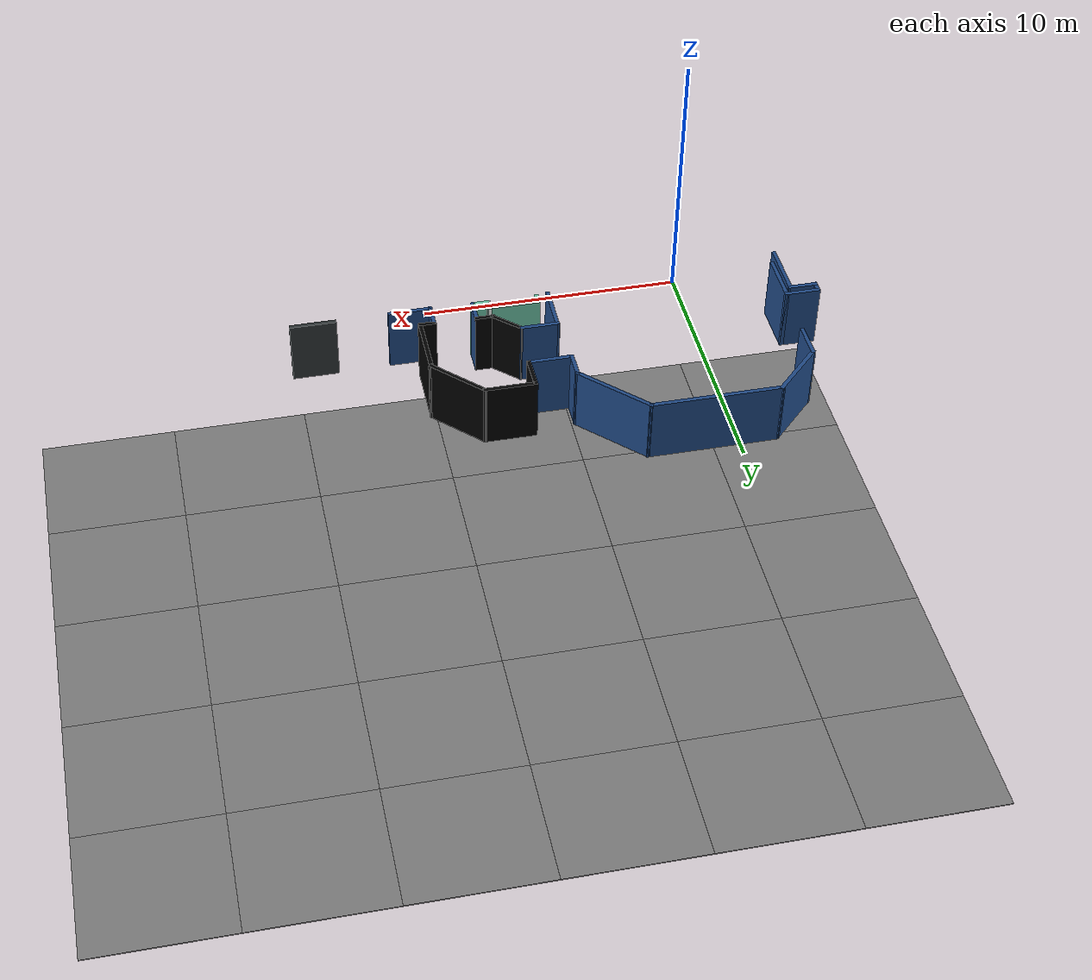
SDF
<sdf version="1.7">
 <world name="default">
  <model name="among_us_world">
   <pose>0.133216 -0.12311 0 0 -0 0</pose>
   <link name="Wall_0">
    <collision name="Wall_0_Collision">
     <geometry><box><size>5 0.15 2.5</size></box></geometry>
     <pose>0 0 1.25 0 -0 0</pose>
    </collision>
    <visual name="Wall_0_Visual">
     <pose>0 0 1.25 0 -0 0</pose>
     <geometry><box><size>5 0.15 2.5</size></box></geometry>
     <material>
      <ambient>0.12549 0.290196 0.529412 1</ambient>
      <diffuse>0.12549 0.290196 0.529412 1</diffuse>
      <specular>0.08 0.08 0.08 1</specular>
      <emissive>0 0 0 1</emissive>
      <pbr><metal><roughness>0.82</roughness><metalness>0</metalness></metal></pbr>
     </material>
     <meta><layer>0</layer></meta>
    </visual>
    <pose>0.883234 9.56872 0 0 -0 0</pose>
   </link>
   <link name="Wall_1">
    <collision name="Wall_1_Collision">
     <geometry><box><size>3.25 0.15 2.5</size></box></geometry>
     <pose>0 0 1.25 0 -0 0</pose>
    </collision>
    <visual name="Wall_1_Visual">
     <pose>0 0 1.25 0 -0 0</pose>
     <geometry><box><size>3.25 0.15 2.5</size></box></geometry>
     <material>
      <ambient>0.12549 0.290196 0.529412 1</ambient>
      <diffuse>0.12549 0.290196 0.529412 1</diffuse>
      <specular>0.08 0.08 0.08 1</specular>
      <emissive>0 0 0 1</emissive>
      <pbr><metal><roughness>0.82</roughness><metalness>0</metalness></metal></pbr>
     </material>
     <meta><layer>0</layer></meta>
    </visual>
    <pose>4.40446 8.47278 0 0 -0 -0.785267</pose>
   </link>
   <link name="Wall_10">
    <collision name="Wall_10_Collision">
     <geometry><box><size>0.677967 0.15 2.5</size></box></geometry>
     <pose>0 0 1.25 0 -0 0</pose>
    </collision>
    <visual name="Wall_10_Visual">
     <pose>0 0 1.25 0 -0 0</pose>
     <geometry><box><size>0.677967 0.15 2.5</size></box></geometry>
     <material>
      <ambient>0 0 0 1</ambient>
      <diffuse>0 0 0 1</diffuse>
      <specular>0.08 0.08 0.08 1</specular>
      <emissive>0 0 0 1</emissive>
      <pbr><metal><roughness>0.82</roughness><metalness>0</metalness></metal></pbr>
     </material>
     <meta><layer>0</layer></meta>
    </visual>
    <pose>10.3484 3.61514 0 0 -0 3.14159</pose>
   </link>
   <link name="Wall_108">
    <collision name="Wall_108_Collision">
     <geometry><box><size>2.25 0.15 2.5</size></box></geometry>
     <pose>0 0 1.25 0 -0 0</pose>
    </collision>
    <visual name="Wall_108_Visual">
     <pose>0 0 1.25 0 -0 0</pose>
     <geometry><box><size>2.25 0.15 2.5</size></box></geometry>
     <material>
      <ambient>0.12549 0.290196 0.529412 1</ambient>
      <diffuse>0.12549 0.290196 0.529412 1</diffuse>
      <specular>0.08 0.08 0.08 1</specular>
      <emissive>0 0 0 1</emissive>
      <pbr><metal><roughness>0.82</roughness><metalness>0</metalness></metal></pbr>
     </material>
     <meta><layer>0</layer></meta>
    </visual>
    <pose>-3.48806 3.1341 0 0 -0 1.5708</pose>
   </link>
   <link name="Wall_109">
    <collision name="Wall_109_Collision">
     <geometry><box><size>1.12677 0.15 2.5</size></box></geometry>
     <pose>0 0 1.25 0 -0 0</pose>
    </collision>
    <visual name="Wall_109_Visual">
     <pose>0 0 1.25 0 -0 0</pose>
     <geometry><box><size>1.12677 0.15 2.5</size></box></geometry>
     <material>
      <ambient>0.12549 0.290196 0.529412 1</ambient>
      <diffuse>0.12549 0.290196 0.529412 1</diffuse>
      <specular>0.08 0.08 0.08 1</specular>
      <emissive>0 0 0 1</emissive>
      <pbr><metal><roughness>0.82</roughness><metalness>0</metalness></metal></pbr>
     </material>
     <meta><layer>0</layer></meta>
    </visual>
    <pose>-3.97634 4.1841 0 0 -0 3.14159</pose>
   </link>
   <link name="Wall_11">
    <collision name="Wall_11_Collision">
     <geometry><box><size>1 0.15 2.5</size></box></geometry>
     <pose>0 0 1.25 0 -0 0</pose>
    </collision>
    <visual name="Wall_11_Visual">
     <pose>0 0 1.25 0 -0 0</pose>
     <geometry><box><size>1 0.15 2.5</size></box></geometry>
     <material>
      <ambient>0.12549 0.290196 0.529412 1</ambient>
      <diffuse>0.12549 0.290196 0.529412 1</diffuse>
      <specular>0.08 0.08 0.08 1</specular>
      <emissive>0 0 0 1</emissive>
      <pbr><metal><roughness>0.82</roughness><metalness>0</metalness></metal></pbr>
     </material>
     <meta><layer>0</layer></meta>
    </visual>
    <pose>10.0844 3.17225 0 0 -0 -1.5708</pose>
   </link>
   <link name="Wall_110">
    <collision name="Wall_110_Collision">
     <geometry><box><size>0.5 0.15 2.5</size></box></geometry>
     <pose>0 0 1.25 0 -0 0</pose>
    </collision>
    <visual name="Wall_110_Visual">
     <pose>0 0 1.25 0 -0 0</pose>
     <geometry><box><size>0.5 0.15 2.5</size></box></geometry>
     <material>
      <ambient>0.12549 0.290196 0.529412 1</ambient>
      <diffuse>0.12549 0.290196 0.529412 1</diffuse>
      <specular>0.08 0.08 0.08 1</specular>
      <emissive>0 0 0 1</emissive>
      <pbr><metal><roughness>0.82</roughness><metalness>0</metalness></metal></pbr>
     </material>
     <meta><layer>0</layer></meta>
    </visual>
    <pose>-4.46462 4.33852 0 0 -0 1.5708</pose>
   </link>
   <link name="Wall_111">
    <collision name="Wall_111_Collision">
     <geometry><box><size>1.37673 0.15 2.5</size></box></geometry>
     <pose>0 0 1.25 0 -0 0</pose>
    </collision>
    <visual name="Wall_111_Visual">
     <pose>0 0 1.25 0 -0 0</pose>
     <geometry><box><size>1.37673 0.15 2.5</size></box></geometry>
     <material>
      <ambient>0.12549 0.290196 0.529412 1</ambient>
      <diffuse>0.12549 0.290196 0.529412 1</diffuse>
      <specular>0.08 0.08 0.08 1</specular>
      <emissive>0 0 0 1</emissive>
      <pbr><metal><roughness>0.82</roughness><metalness>0</metalness></metal></pbr>
     </material>
     <meta><layer>0</layer></meta>
    </visual>
    <pose>-3.85134 4.5341 0 0 -0 0</pose>
   </link>
   <link name="Wall_112">
    <collision name="Wall_112_Collision">
     <geometry><box><size>2 0.15 2.5</size></box></geometry>
     <pose>0 0 1.25 0 -0 0</pose>
    </collision>
    <visual name="Wall_112_Visual">
     <pose>0 0 1.25 0 -0 0</pose>
     <geometry><box><size>2 0.15 2.5</size></box></geometry>
     <material>
      <ambient>0.12549 0.290196 0.529412 1</ambient>
      <diffuse>0.12549 0.290196 0.529412 1</diffuse>
      <specular>0.08 0.08 0.08 1</specular>
      <emissive>0 0 0 1</emissive>
      <pbr><metal><roughness>0.82</roughness><metalness>0</metalness></metal></pbr>
     </material>
     <meta><layer>0</layer></meta>
    </visual>
    <pose>-3.23806 3.6091 0 0 -0 -1.5708</pose>
   </link>
   <link name="Wall_118">
    <collision name="Wall_118_Collision">
     <geometry><box><size>1.5 0.15 2.5</size></box></geometry>
     <pose>0 0 1.25 0 -0 0</pose>
    </collision>
    <visual name="Wall_118_Visual">
     <pose>0 0 1.25 0 -0 0</pose>
     <geometry><box><size>1.5 0.15 2.5</size></box></geometry>
     <material>
      <ambient>0.12549 0.290196 0.529412 1</ambient>
      <diffuse>0.12549 0.290196 0.529412 1</diffuse>
      <specular>0.08 0.08 0.08 1</specular>
      <emissive>0 0 0 1</emissive>
      <pbr><metal><roughness>0.82</roughness><metalness>0</metalness></metal></pbr>
     </material>
     <meta><layer>0</layer></meta>
    </visual>
    <pose>6.27303 4.52497 0 0 -0 0</pose>
   </link>
   <link name="Wall_119">
    <collision name="Wall_119_Collision">
     <geometry><box><size>1.41276 0.15 2.5</size></box></geometry>
     <pose>0 0 1.25 0 -0 0</pose>
    </collision>
    <visual name="Wall_119_Visual">
     <pose>0 0 1.25 0 -0 0</pose>
     <geometry><box><size>1.41276 0.15 2.5</size></box></geometry>
     <material>
      <ambient>0 0 0 1</ambient>
      <diffuse>0 0 0 1</diffuse>
      <specular>0.08 0.08 0.08 1</specular>
      <emissive>0 0 0 1</emissive>
      <pbr><metal><roughness>0.82</roughness><metalness>0</metalness></metal></pbr>
     </material>
     <meta><layer>0</layer></meta>
    </visual>
    <pose>7.42533 4.09435 0 0 -0 -0.750545</pose>
   </link>
   <link name="Wall_12">
    <collision name="Wall_12_Collision">
     <geometry><box><size>1.67797 0.15 2.5</size></box></geometry>
     <pose>0 0 1.25 0 -0 0</pose>
    </collision>
    <visual name="Wall_12_Visual">
     <pose>0 0 1.25 0 -0 0</pose>
     <geometry><box><size>1.67797 0.15 2.5</size></box></geometry>
     <material>
      <ambient>0.12549 0.290196 0.529412 1</ambient>
      <diffuse>0.12549 0.290196 0.529412 1</diffuse>
      <specular>0.08 0.08 0.08 1</specular>
      <emissive>0 0 0 1</emissive>
      <pbr><metal><roughness>0.82</roughness><metalness>0</metalness></metal></pbr>
     </material>
     <meta><layer>0</layer></meta>
    </visual>
    <pose>10.8484 2.76514 0 0 -0 0</pose>
   </link>
   <link name="Wall_122">
    <collision name="Wall_122_Collision">
     <geometry><box><size>0.75 0.15 2.5</size></box></geometry>
     <pose>0 0 1.25 0 -0 0</pose>
    </collision>
    <visual name="Wall_122_Visual">
     <pose>0 0 1.25 0 -0 0</pose>
     <geometry><box><size>0.75 0.15 2.5</size></box></geometry>
     <material>
      <ambient>0 0 0 1</ambient>
      <diffuse>0 0 0 1</diffuse>
      <specular>0.08 0.08 0.08 1</specular>
      <emissive>0 0 0 1</emissive>
      <pbr><metal><roughness>0.82</roughness><metalness>0</metalness></metal></pbr>
     </material>
     <meta><layer>0</layer></meta>
    </visual>
    <pose>8.18707 3.66372 0 0 -0 0</pose>
   </link>
   <link name="Wall_123">
    <collision name="Wall_123_Collision">
     <geometry><box><size>1 0.15 2.5</size></box></geometry>
     <pose>0 0 1.25 0 -0 0</pose>
    </collision>
    <visual name="Wall_123_Visual">
     <pose>0 0 1.25 0 -0 0</pose>
     <geometry><box><size>1 0.15 2.5</size></box></geometry>
     <material>
      <ambient>0.12549 0.290196 0.529412 1</ambient>
      <diffuse>0.12549 0.290196 0.529412 1</diffuse>
      <specular>0.08 0.08 0.08 1</specular>
      <emissive>0 0 0 1</emissive>
      <pbr><metal><roughness>0.82</roughness><metalness>0</metalness></metal></pbr>
     </material>
     <meta><layer>0</layer></meta>
    </visual>
    <pose>8.48707 3.23872 0 0 -0 -1.5708</pose>
   </link>
   <link name="Wall_124">
    <collision name="Wall_124_Collision">
     <geometry><box><size>0.75 0.15 2.5</size></box></geometry>
     <pose>0 0 1.25 0 -0 0</pose>
    </collision>
    <visual name="Wall_124_Visual">
     <pose>0 0 1.25 0 -0 0</pose>
     <geometry><box><size>0.75 0.15 2.5</size></box></geometry>
     <material>
      <ambient>0.435294 0.796078 0.67451 1</ambient>
      <diffuse>0.435294 0.796078 0.67451 1</diffuse>
      <specular>0.08 0.08 0.08 1</specular>
      <emissive>0 0 0 1</emissive>
      <pbr><metal><roughness>0.82</roughness><metalness>0</metalness></metal></pbr>
     </material>
     <meta><layer>0</layer></meta>
    </visual>
    <pose>8.18707 2.81372 0 0 -0 3.14159</pose>
   </link>
   <link name="Wall_125">
    <collision name="Wall_125_Collision">
     <geometry><box><size>0.5 0.15 2.5</size></box></geometry>
     <pose>0 0 1.25 0 -0 0</pose>
    </collision>
    <visual name="Wall_125_Visual">
     <pose>0 0 1.25 0 -0 0</pose>
     <geometry><box><size>0.5 0.15 2.5</size></box></geometry>
     <material>
      <ambient>1 1 1 1</ambient>
      <diffuse>1 1 1 1</diffuse>
      <specular>0.08 0.08 0.08 1</specular>
      <emissive>0 0 0 1</emissive>
      <pbr><metal><roughness>0.82</roughness><metalness>0</metalness></metal></pbr>
     </material>
     <meta><layer>0</layer></meta>
    </visual>
    <pose>7.88707 2.98872 0 0 -0 1.5708</pose>
   </link>
   <link name="Wall_126">
    <collision name="Wall_126_Collision">
     <geometry><box><size>2 0.15 2.5</size></box></geometry>
     <pose>0 0 1.25 0 -0 0</pose>
    </collision>
    <visual name="Wall_126_Visual">
     <pose>0 0 1.25 0 -0 0</pose>
     <geometry><box><size>2 0.15 2.5</size></box></geometry>
     <material>
      <ambient>0.435294 0.796078 0.67451 1</ambient>
      <diffuse>0.435294 0.796078 0.67451 1</diffuse>
      <specular>0.08 0.08 0.08 1</specular>
      <emissive>0 0 0 1</emissive>
      <pbr><metal><roughness>0.82</roughness><metalness>0</metalness></metal></pbr>
     </material>
     <meta><layer>0</layer></meta>
    </visual>
    <pose>6.96207 3.16372 0 0 -0 3.14159</pose>
   </link>
   <link name="Wall_127">
    <collision name="Wall_127_Collision">
     <geometry><box><size>0.5 0.15 2.5</size></box></geometry>
     <pose>0 0 1.25 0 -0 0</pose>
    </collision>
    <visual name="Wall_127_Visual">
     <pose>0 0 1.25 0 -0 0</pose>
     <geometry><box><size>0.5 0.15 2.5</size></box></geometry>
     <material>
      <ambient>0.435294 0.796078 0.67451 1</ambient>
      <diffuse>0.435294 0.796078 0.67451 1</diffuse>
      <specular>0.08 0.08 0.08 1</specular>
      <emissive>0 0 0 1</emissive>
      <pbr><metal><roughness>0.82</roughness><metalness>0</metalness></metal></pbr>
     </material>
     <meta><layer>0</layer></meta>
    </visual>
    <pose>6.03707 2.98872 0 0 -0 -1.5708</pose>
   </link>
   <link name="Wall_179">
    <collision name="Wall_179_Collision">
     <geometry><box><size>1.90693 0.15 2.5</size></box></geometry>
     <pose>0 0 1.25 0 -0 0</pose>
    </collision>
    <visual name="Wall_179_Visual">
     <pose>0 0 1.25 0 -0 0</pose>
     <geometry><box><size>1.90693 0.15 2.5</size></box></geometry>
     <material>
      <ambient>0.12549 0.290196 0.529412 1</ambient>
      <diffuse>0.12549 0.290196 0.529412 1</diffuse>
      <specular>0.08 0.08 0.08 1</specular>
      <emissive>0 0 0 1</emissive>
      <pbr><metal><roughness>0.82</roughness><metalness>0</metalness></metal></pbr>
     </material>
     <meta><layer>0</layer></meta>
    </visual>
    <pose>5.59803 3.64664 0 0 -0 -1.58851</pose>
   </link>
   <link name="Wall_19">
    <collision name="Wall_19_Collision">
     <geometry><box><size>1.75 0.15 2.5</size></box></geometry>
     <pose>0 0 1.25 0 -0 0</pose>
    </collision>
    <visual name="Wall_19_Visual">
     <pose>0 0 1.25 0 -0 0</pose>
     <geometry><box><size>1.75 0.15 2.5</size></box></geometry>
     <material>
      <ambient>0.180392 0.203922 0.211765 1</ambient>
      <diffuse>0.180392 0.203922 0.211765 1</diffuse>
      <specular>0.08 0.08 0.08 1</specular>
      <emissive>0 0 0 1</emissive>
      <pbr><metal><roughness>0.82</roughness><metalness>0</metalness></metal></pbr>
     </material>
     <meta><layer>0</layer></meta>
    </visual>
    <pose>14.5124 2.80862 0 0 -0 0</pose>
   </link>
   <link name="Wall_29">
    <collision name="Wall_29_Collision">
     <geometry><box><size>2.5 0.15 2.5</size></box></geometry>
     <pose>0 0 1.25 0 -0 0</pose>
    </collision>
    <visual name="Wall_29_Visual">
     <pose>0 0 1.25 0 -0 0</pose>
     <geometry><box><size>2.5 0.15 2.5</size></box></geometry>
     <material>
      <ambient>0.12549 0.290196 0.529412 1</ambient>
      <diffuse>0.12549 0.290196 0.529412 1</diffuse>
      <specular>0.08 0.08 0.08 1</specular>
      <emissive>0 0 0 1</emissive>
      <pbr><metal><roughness>0.82</roughness><metalness>0</metalness></metal></pbr>
     </material>
     <meta><layer>0</layer></meta>
    </visual>
    <pose>-2.37241 8.73794 0 0 -0 -2.35611</pose>
   </link>
   <link name="Wall_30">
    <collision name="Wall_30_Collision">
     <geometry><box><size>1.4062 0.15 2.5</size></box></geometry>
     <pose>0 0 1.25 0 -0 0</pose>
    </collision>
    <visual name="Wall_30_Visual">
     <pose>0 0 1.25 0 -0 0</pose>
     <geometry><box><size>1.4062 0.15 2.5</size></box></geometry>
     <material>
      <ambient>0.12549 0.290196 0.529412 1</ambient>
      <diffuse>0.12549 0.290196 0.529412 1</diffuse>
      <specular>0.08 0.08 0.08 1</specular>
      <emissive>0 0 0 1</emissive>
      <pbr><metal><roughness>0.82</roughness><metalness>0</metalness></metal></pbr>
     </material>
     <meta><layer>0</layer></meta>
    </visual>
    <pose>-3.19527 7.27912 0 0 -0 -1.55841</pose>
   </link>
   <link name="Wall_4">
    <collision name="Wall_4_Collision">
     <geometry><box><size>1.06331 0.15 2.5</size></box></geometry>
     <pose>0 0 1.25 0 -0 0</pose>
    </collision>
    <visual name="Wall_4_Visual">
     <pose>0 0 1.25 0 -0 0</pose>
     <geometry><box><size>1.06331 0.15 2.5</size></box></geometry>
     <material>
      <ambient>0.12549 0.290196 0.529412 1</ambient>
      <diffuse>0.12549 0.290196 0.529412 1</diffuse>
      <specular>0.08 0.08 0.08 1</specular>
      <emissive>0 0 0 1</emissive>
      <pbr><metal><roughness>0.82</roughness><metalness>0</metalness></metal></pbr>
     </material>
     <meta><layer>0</layer></meta>
    </visual>
    <pose>5.50068 6.92018 0 0 -0 -1.5708</pose>
   </link>
   <link name="Wall_5">
    <collision name="Wall_5_Collision">
     <geometry><box><size>1.75 0.15 2.5</size></box></geometry>
     <pose>0 0 1.25 0 -0 0</pose>
    </collision>
    <visual name="Wall_5_Visual">
     <pose>0 0 1.25 0 -0 0</pose>
     <geometry><box><size>1.75 0.15 2.5</size></box></geometry>
     <material>
      <ambient>0.12549 0.290196 0.529412 1</ambient>
      <diffuse>0.12549 0.290196 0.529412 1</diffuse>
      <specular>0.08 0.08 0.08 1</specular>
      <emissive>0 0 0 1</emissive>
      <pbr><metal><roughness>0.82</roughness><metalness>0</metalness></metal></pbr>
     </material>
     <meta><layer>0</layer></meta>
    </visual>
    <pose>6.30068 6.44797 0 0 -0 0</pose>
   </link>
   <link name="Wall_6">
    <collision name="Wall_6_Collision">
     <geometry><box><size>1.31331 0.15 2.5</size></box></geometry>
     <pose>0 0 1.25 0 -0 0</pose>
    </collision>
    <visual name="Wall_6_Visual">
     <pose>0 0 1.25 0 -0 0</pose>
     <geometry><box><size>1.31331 0.15 2.5</size></box></geometry>
     <material>
      <ambient>0 0 0 1</ambient>
      <diffuse>0 0 0 1</diffuse>
      <specular>0.08 0.08 0.08 1</specular>
      <emissive>0 0 0 1</emissive>
      <pbr><metal><roughness>0.82</roughness><metalness>0</metalness></metal></pbr>
     </material>
     <meta><layer>0</layer></meta>
    </visual>
    <pose>7.10068 7.04518 0 0 -0 1.5708</pose>
   </link>
   <link name="Wall_7">
    <collision name="Wall_7_Collision">
     <geometry><box><size>2 0.15 2.5</size></box></geometry>
     <pose>0 0 1.25 0 -0 0</pose>
    </collision>
    <visual name="Wall_7_Visual">
     <pose>0 0 1.25 0 -0 0</pose>
     <geometry><box><size>2 0.15 2.5</size></box></geometry>
     <material>
      <ambient>0 0 0 1</ambient>
      <diffuse>0 0 0 1</diffuse>
      <specular>0.08 0.08 0.08 1</specular>
      <emissive>0 0 0 1</emissive>
      <pbr><metal><roughness>0.82</roughness><metalness>0</metalness></metal></pbr>
     </material>
     <meta><layer>0</layer></meta>
    </visual>
    <pose>8.02568 7.62684 0 0 -0 0</pose>
   </link>
   <link name="Wall_8">
    <collision name="Wall_8_Collision">
     <geometry><box><size>2.5 0.15 2.5</size></box></geometry>
     <pose>0 0 1.25 0 -0 0</pose>
    </collision>
    <visual name="Wall_8_Visual">
     <pose>0 0 1.25 0 -0 0</pose>
     <geometry><box><size>2.5 0.15 2.5</size></box></geometry>
     <material>
      <ambient>0 0 0 1</ambient>
      <diffuse>0 0 0 1</diffuse>
      <specular>0.08 0.08 0.08 1</specular>
      <emissive>0 0 0 1</emissive>
      <pbr><metal><roughness>0.82</roughness><metalness>0</metalness></metal></pbr>
     </material>
     <meta><layer>0</layer></meta>
    </visual>
    <pose>9.78153 6.79599 0 0 -0 -0.785398</pose>
   </link>
   <link name="Wall_9">
    <collision name="Wall_9_Collision">
     <geometry><box><size>2.5 0.15 2.5</size></box></geometry>
     <pose>0 0 1.25 0 -0 0</pose>
    </collision>
    <visual name="Wall_9_Visual">
     <pose>0 0 1.25 0 -0 0</pose>
     <geometry><box><size>2.5 0.15 2.5</size></box></geometry>
     <material>
      <ambient>0 0 0 1</ambient>
      <diffuse>0 0 0 1</diffuse>
      <specular>0.08 0.08 0.08 1</specular>
      <emissive>0 0 0 1</emissive>
      <pbr><metal><roughness>0.82</roughness><metalness>0</metalness></metal></pbr>
     </material>
     <meta><layer>0</layer></meta>
    </visual>
    <pose>10.6124 4.79014 0 0 -0 -1.5708</pose>
   </link>
   <static>1</static>
  </model>
  <model name="asphalt_tile_05_04">
   <static>1</static>
   <pose>-1.400 7.000 -0.020 0 -0 0</pose>
   <link name="link">
    <collision name="collision"><geometry><box><size>4.800 4.400 0.040</size></box></geometry></collision>
    <visual name="visual">
     <cast_shadows>0</cast_shadows>
     <geometry><box><size>4.800 4.400 0.040</size></box></geometry>
     <material>
      <ambient>0.5 0.5 0.5 1</ambient>
      <diffuse>0.5 0.5 0.5 1</diffuse>
      <specular>0.2 0.2 0.2 1</specular>
      <emissive>0 0 0 1</emissive>
      <pbr>
       <metal>
        <albedo_map>model://asphalt_plane/materials/textures/tarmac.png</albedo_map>
        <roughness>0.85</roughness>
        <metalness>0</metalness>
       </metal>
      </pbr>
     </material>
    </visual>
   </link>
  </model>
  <model name="asphalt_tile_05_05">
   <static>1</static>
   <pose>3.400 7.000 -0.020 0 -0 0</pose>
   <link name="link">
    <collision name="collision"><geometry><box><size>4.800 4.400 0.040</size></box></geometry></collision>
    <visual name="visual">
     <cast_shadows>0</cast_shadows>
     <geometry><box><size>4.800 4.400 0.040</size></box></geometry>
     <material>
      <ambient>0.5 0.5 0.5 1</ambient>
      <diffuse>0.5 0.5 0.5 1</diffuse>
      <specular>0.2 0.2 0.2 1</specular>
      <emissive>0 0 0 1</emissive>
      <pbr>
       <metal>
        <albedo_map>model://asphalt_plane/materials/textures/tarmac.png</albedo_map>
        <roughness>0.85</roughness>
        <metalness>0</metalness>
       </metal>
      </pbr>
     </material>
    </visual>
   </link>
  </model>
  <model name="asphalt_tile_05_06">
   <static>1</static>
   <pose>8.200 7.000 -0.020 0 -0 0</pose>
   <link name="link">
    <collision name="collision"><geometry><box><size>4.800 4.400 0.040</size></box></geometry></collision>
    <visual name="visual">
     <cast_shadows>0</cast_shadows>
     <geometry><box><size>4.800 4.400 0.040</size></box></geometry>
     <material>
      <ambient>0.5 0.5 0.5 1</ambient>
      <diffuse>0.5 0.5 0.5 1</diffuse>
      <specular>0.2 0.2 0.2 1</specular>
      <emissive>0 0 0 1</emissive>
      <pbr>
       <metal>
        <albedo_map>model://asphalt_plane/materials/textures/tarmac.png</albedo_map>
        <roughness>0.85</roughness>
        <metalness>0</metalness>
       </metal>
      </pbr>
     </material>
    </visual>
   </link>
  </model>
  <model name="asphalt_tile_05_07">
   <static>1</static>
   <pose>13.000 7.000 -0.020 0 -0 0</pose>
   <link name="link">
    <collision name="collision"><geometry><box><size>4.800 4.400 0.040</size></box></geometry></collision>
    <visual name="visual">
     <cast_shadows>0</cast_shadows>
     <geometry><box><size>4.800 4.400 0.040</size></box></geometry>
     <material>
      <ambient>0.5 0.5 0.5 1</ambient>
      <diffuse>0.5 0.5 0.5 1</diffuse>
      <specular>0.2 0.2 0.2 1</specular>
      <emissive>0 0 0 1</emissive>
      <pbr>
       <metal>
        <albedo_map>model://asphalt_plane/materials/textures/tarmac.png</albedo_map>
        <roughness>0.85</roughness>
        <metalness>0</metalness>
       </metal>
      </pbr>
     </material>
    </visual>
   </link>
  </model>
  <model name="asphalt_tile_05_08">
   <static>1</static>
   <pose>17.800 7.000 -0.020 0 -0 0</pose>
   <link name="link">
    <collision name="collision"><geometry><box><size>4.800 4.400 0.040</size></box></geometry></collision>
    <visual name="visual">
     <cast_shadows>0</cast_shadows>
     <geometry><box><size>4.800 4.400 0.040</size></box></geometry>
     <material>
      <ambient>0.5 0.5 0.5 1</ambient>
      <diffuse>0.5 0.5 0.5 1</diffuse>
      <specular>0.2 0.2 0.2 1</specular>
      <emissive>0 0 0 1</emissive>
      <pbr>
       <metal>
        <albedo_map>model://asphalt_plane/materials/textures/tarmac.png</albedo_map>
        <roughness>0.85</roughness>
        <metalness>0</metalness>
       </metal>
      </pbr>
     </material>
    </visual>
   </link>
  </model>
  <model name="asphalt_tile_05_09">
   <static>1</static>
   <pose>22.600 7.000 -0.020 0 -0 0</pose>
   <link name="link">
    <collision name="collision"><geometry><box><size>4.800 4.400 0.040</size></box></geometry></collision>
    <visual name="visual">
     <cast_shadows>0</cast_shadows>
     <geometry><box><size>4.800 4.400 0.040</size></box></geometry>
     <material>
      <ambient>0.5 0.5 0.5 1</ambient>
      <diffuse>0.5 0.5 0.5 1</diffuse>
      <specular>0.2 0.2 0.2 1</specular>
      <emissive>0 0 0 1</emissive>
      <pbr>
       <metal>
        <albedo_map>model://asphalt_plane/materials/textures/tarmac.png</albedo_map>
        <roughness>0.85</roughness>
        <metalness>0</metalness>
       </metal>
      </pbr>
     </material>
    </visual>
   </link>
  </model>
  <model name="asphalt_tile_06_04">
   <static>1</static>
   <pose>-1.400 11.400 -0.020 0 -0 0</pose>
   <link name="link">
    <collision name="collision"><geometry><box><size>4.800 4.400 0.040</size></box></geometry></collision>
    <visual name="visual">
     <cast_shadows>0</cast_shadows>
     <geometry><box><size>4.800 4.400 0.040</size></box></geometry>
     <material>
      <ambient>0.5 0.5 0.5 1</ambient>
      <diffuse>0.5 0.5 0.5 1</diffuse>
      <specular>0.2 0.2 0.2 1</specular>
      <emissive>0 0 0 1</emissive>
      <pbr>
       <metal>
        <albedo_map>model://asphalt_plane/materials/textures/tarmac.png</albedo_map>
        <roughness>0.85</roughness>
        <metalness>0</metalness>
       </metal>
      </pbr>
     </material>
    </visual>
   </link>
  </model>
  <model name="asphalt_tile_06_05">
   <static>1</static>
   <pose>3.400 11.400 -0.020 0 -0 0</pose>
   <link name="link">
    <collision name="collision"><geometry><box><size>4.800 4.400 0.040</size></box></geometry></collision>
    <visual name="visual">
     <cast_shadows>0</cast_shadows>
     <geometry><box><size>4.800 4.400 0.040</size></box></geometry>
     <material>
      <ambient>0.5 0.5 0.5 1</ambient>
      <diffuse>0.5 0.5 0.5 1</diffuse>
      <specular>0.2 0.2 0.2 1</specular>
      <emissive>0 0 0 1</emissive>
      <pbr>
       <metal>
        <albedo_map>model://asphalt_plane/materials/textures/tarmac.png</albedo_map>
        <roughness>0.85</roughness>
        <metalness>0</metalness>
       </metal>
      </pbr>
     </material>
    </visual>
   </link>
  </model>
  <model name="asphalt_tile_06_06">
   <static>1</static>
   <pose>8.200 11.400 -0.020 0 -0 0</pose>
   <link name="link">
    <collision name="collision"><geometry><box><size>4.800 4.400 0.040</size></box></geometry></collision>
    <visual name="visual">
     <cast_shadows>0</cast_shadows>
     <geometry><box><size>4.800 4.400 0.040</size></box></geometry>
     <material>
      <ambient>0.5 0.5 0.5 1</ambient>
      <diffuse>0.5 0.5 0.5 1</diffuse>
      <specular>0.2 0.2 0.2 1</specular>
      <emissive>0 0 0 1</emissive>
      <pbr>
       <metal>
        <albedo_map>model://asphalt_plane/materials/textures/tarmac.png</albedo_map>
        <roughness>0.85</roughness>
        <metalness>0</metalness>
       </metal>
      </pbr>
     </material>
    </visual>
   </link>
  </model>
  <model name="asphalt_tile_06_07">
   <static>1</static>
   <pose>13.000 11.400 -0.020 0 -0 0</pose>
   <link name="link">
    <collision name="collision"><geometry><box><size>4.800 4.400 0.040</size></box></geometry></collision>
    <visual name="visual">
     <cast_shadows>0</cast_shadows>
     <geometry><box><size>4.800 4.400 0.040</size></box></geometry>
     <material>
      <ambient>0.5 0.5 0.5 1</ambient>
      <diffuse>0.5 0.5 0.5 1</diffuse>
      <specular>0.2 0.2 0.2 1</specular>
      <emissive>0 0 0 1</emissive>
      <pbr>
       <metal>
        <albedo_map>model://asphalt_plane/materials/textures/tarmac.png</albedo_map>
        <roughness>0.85</roughness>
        <metalness>0</metalness>
       </metal>
      </pbr>
     </material>
    </visual>
   </link>
  </model>
  <model name="asphalt_tile_06_08">
   <static>1</static>
   <pose>17.800 11.400 -0.020 0 -0 0</pose>
   <link name="link">
    <collision name="collision"><geometry><box><size>4.800 4.400 0.040</size></box></geometry></collision>
    <visual name="visual">
     <cast_shadows>0</cast_shadows>
     <geometry><box><size>4.800 4.400 0.040</size></box></geometry>
     <material>
      <ambient>0.5 0.5 0.5 1</ambient>
      <diffuse>0.5 0.5 0.5 1</diffuse>
      <specular>0.2 0.2 0.2 1</specular>
      <emissive>0 0 0 1</emissive>
      <pbr>
       <metal>
        <albedo_map>model://asphalt_plane/materials/textures/tarmac.png</albedo_map>
        <roughness>0.85</roughness>
        <metalness>0</metalness>
       </metal>
      </pbr>
     </material>
    </visual>
   </link>
  </model>
  <model name="asphalt_tile_06_09">
   <static>1</static>
   <pose>22.600 11.400 -0.020 0 -0 0</pose>
   <link name="link">
    <collision name="collision"><geometry><box><size>4.800 4.400 0.040</size></box></geometry></collision>
    <visual name="visual">
     <cast_shadows>0</cast_shadows>
     <geometry><box><size>4.800 4.400 0.040</size></box></geometry>
     <material>
      <ambient>0.5 0.5 0.5 1</ambient>
      <diffuse>0.5 0.5 0.5 1</diffuse>
      <specular>0.2 0.2 0.2 1</specular>
      <emissive>0 0 0 1</emissive>
      <pbr>
       <metal>
        <albedo_map>model://asphalt_plane/materials/textures/tarmac.png</albedo_map>
        <roughness>0.85</roughness>
        <metalness>0</metalness>
       </metal>
      </pbr>
     </material>
    </visual>
   </link>
  </model>
  <model name="asphalt_tile_07_04">
   <static>1</static>
   <pose>-1.400 15.800 -0.020 0 -0 0</pose>
   <link name="link">
    <collision name="collision"><geometry><box><size>4.800 4.400 0.040</size></box></geometry></collision>
    <visual name="visual">
     <cast_shadows>0</cast_shadows>
     <geometry><box><size>4.800 4.400 0.040</size></box></geometry>
     <material>
      <ambient>0.5 0.5 0.5 1</ambient>
      <diffuse>0.5 0.5 0.5 1</diffuse>
      <specular>0.2 0.2 0.2 1</specular>
      <emissive>0 0 0 1</emissive>
      <pbr>
       <metal>
        <albedo_map>model://asphalt_plane/materials/textures/tarmac.png</albedo_map>
        <roughness>0.85</roughness>
        <metalness>0</metalness>
       </metal>
      </pbr>
     </material>
    </visual>
   </link>
  </model>
  <model name="asphalt_tile_07_05">
   <static>1</static>
   <pose>3.400 15.800 -0.020 0 -0 0</pose>
   <link name="link">
    <collision name="collision"><geometry><box><size>4.800 4.400 0.040</size></box></geometry></collision>
    <visual name="visual">
     <cast_shadows>0</cast_shadows>
     <geometry><box><size>4.800 4.400 0.040</size></box></geometry>
     <material>
      <ambient>0.5 0.5 0.5 1</ambient>
      <diffuse>0.5 0.5 0.5 1</diffuse>
      <specular>0.2 0.2 0.2 1</specular>
      <emissive>0 0 0 1</emissive>
      <pbr>
       <metal>
        <albedo_map>model://asphalt_plane/materials/textures/tarmac.png</albedo_map>
        <roughness>0.85</roughness>
        <metalness>0</metalness>
       </metal>
      </pbr>
     </material>
    </visual>
   </link>
  </model>
  <model name="asphalt_tile_07_06">
   <static>1</static>
   <pose>8.200 15.800 -0.020 0 -0 0</pose>
   <link name="link">
    <collision name="collision"><geometry><box><size>4.800 4.400 0.040</size></box></geometry></collision>
    <visual name="visual">
     <cast_shadows>0</cast_shadows>
     <geometry><box><size>4.800 4.400 0.040</size></box></geometry>
     <material>
      <ambient>0.5 0.5 0.5 1</ambient>
      <diffuse>0.5 0.5 0.5 1</diffuse>
      <specular>0.2 0.2 0.2 1</specular>
      <emissive>0 0 0 1</emissive>
      <pbr>
       <metal>
        <albedo_map>model://asphalt_plane/materials/textures/tarmac.png</albedo_map>
        <roughness>0.85</roughness>
        <metalness>0</metalness>
       </metal>
      </pbr>
     </material>
    </visual>
   </link>
  </model>
  <model name="asphalt_tile_07_07">
   <static>1</static>
   <pose>13.000 15.800 -0.020 0 -0 0</pose>
   <link name="link">
    <collision name="collision"><geometry><box><size>4.800 4.400 0.040</size></box></geometry></collision>
    <visual name="visual">
     <cast_shadows>0</cast_shadows>
     <geometry><box><size>4.800 4.400 0.040</size></box></geometry>
     <material>
      <ambient>0.5 0.5 0.5 1</ambient>
      <diffuse>0.5 0.5 0.5 1</diffuse>
      <specular>0.2 0.2 0.2 1</specular>
      <emissive>0 0 0 1</emissive>
      <pbr>
       <metal>
        <albedo_map>model://asphalt_plane/materials/textures/tarmac.png</albedo_map>
        <roughness>0.85</roughness>
        <metalness>0</metalness>
       </metal>
      </pbr>
     </material>
    </visual>
   </link>
  </model>
  <model name="asphalt_tile_07_08">
   <static>1</static>
   <pose>17.800 15.800 -0.020 0 -0 0</pose>
   <link name="link">
    <collision name="collision"><geometry><box><size>4.800 4.400 0.040</size></box></geometry></collision>
    <visual name="visual">
     <cast_shadows>0</cast_shadows>
     <geometry><box><size>4.800 4.400 0.040</size></box></geometry>
     <material>
      <ambient>0.5 0.5 0.5 1</ambient>
      <diffuse>0.5 0.5 0.5 1</diffuse>
      <specular>0.2 0.2 0.2 1</specular>
      <emissive>0 0 0 1</emissive>
      <pbr>
       <metal>
        <albedo_map>model://asphalt_plane/materials/textures/tarmac.png</albedo_map>
        <roughness>0.85</roughness>
        <metalness>0</metalness>
       </metal>
      </pbr>
     </material>
    </visual>
   </link>
  </model>
  <model name="asphalt_tile_07_09">
   <static>1</static>
   <pose>22.600 15.800 -0.020 0 -0 0</pose>
   <link name="link">
    <collision name="collision"><geometry><box><size>4.800 4.400 0.040</size></box></geometry></collision>
    <visual name="visual">
     <cast_shadows>0</cast_shadows>
     <geometry><box><size>4.800 4.400 0.040</size></box></geometry>
     <material>
      <ambient>0.5 0.5 0.5 1</ambient>
      <diffuse>0.5 0.5 0.5 1</diffuse>
      <specular>0.2 0.2 0.2 1</specular>
      <emissive>0 0 0 1</emissive>
      <pbr>
       <metal>
        <albedo_map>model://asphalt_plane/materials/textures/tarmac.png</albedo_map>
        <roughness>0.85</roughness>
        <metalness>0</metalness>
       </metal>
      </pbr>
     </material>
    </visual>
   </link>
  </model>
  <model name="asphalt_tile_08_04">
   <static>1</static>
   <pose>-1.400 20.200 -0.020 0 -0 0</pose>
   <link name="link">
    <collision name="collision"><geometry><box><size>4.800 4.400 0.040</size></box></geometry></collision>
    <visual name="visual">
     <cast_shadows>0</cast_shadows>
     <geometry><box><size>4.800 4.400 0.040</size></box></geometry>
     <material>
      <ambient>0.5 0.5 0.5 1</ambient>
      <diffuse>0.5 0.5 0.5 1</diffuse>
      <specular>0.2 0.2 0.2 1</specular>
      <emissive>0 0 0 1</emissive>
      <pbr>
       <metal>
        <albedo_map>model://asphalt_plane/materials/textures/tarmac.png</albedo_map>
        <roughness>0.85</roughness>
        <metalness>0</metalness>
       </metal>
      </pbr>
     </material>
    </visual>
   </link>
  </model>
  <model name="asphalt_tile_08_05">
   <static>1</static>
   <pose>3.400 20.200 -0.020 0 -0 0</pose>
   <link name="link">
    <collision name="collision"><geometry><box><size>4.800 4.400 0.040</size></box></geometry></collision>
    <visual name="visual">
     <cast_shadows>0</cast_shadows>
     <geometry><box><size>4.800 4.400 0.040</size></box></geometry>
     <material>
      <ambient>0.5 0.5 0.5 1</ambient>
      <diffuse>0.5 0.5 0.5 1</diffuse>
      <specular>0.2 0.2 0.2 1</specular>
      <emissive>0 0 0 1</emissive>
      <pbr>
       <metal>
        <albedo_map>model://asphalt_plane/materials/textures/tarmac.png</albedo_map>
        <roughness>0.85</roughness>
        <metalness>0</metalness>
       </metal>
      </pbr>
     </material>
    </visual>
   </link>
  </model>
  <model name="asphalt_tile_08_06">
   <static>1</static>
   <pose>8.200 20.200 -0.020 0 -0 0</pose>
   <link name="link">
    <collision name="collision"><geometry><box><size>4.800 4.400 0.040</size></box></geometry></collision>
    <visual name="visual">
     <cast_shadows>0</cast_shadows>
     <geometry><box><size>4.800 4.400 0.040</size></box></geometry>
     <material>
      <ambient>0.5 0.5 0.5 1</ambient>
      <diffuse>0.5 0.5 0.5 1</diffuse>
      <specular>0.2 0.2 0.2 1</specular>
      <emissive>0 0 0 1</emissive>
      <pbr>
       <metal>
        <albedo_map>model://asphalt_plane/materials/textures/tarmac.png</albedo_map>
        <roughness>0.85</roughness>
        <metalness>0</metalness>
       </metal>
      </pbr>
     </material>
    </visual>
   </link>
  </model>
  <model name="asphalt_tile_08_07">
   <static>1</static>
   <pose>13.000 20.200 -0.020 0 -0 0</pose>
   <link name="link">
    <collision name="collision"><geometry><box><size>4.800 4.400 0.040</size></box></geometry></collision>
    <visual name="visual">
     <cast_shadows>0</cast_shadows>
     <geometry><box><size>4.800 4.400 0.040</size></box></geometry>
     <material>
      <ambient>0.5 0.5 0.5 1</ambient>
      <diffuse>0.5 0.5 0.5 1</diffuse>
      <specular>0.2 0.2 0.2 1</specular>
      <emissive>0 0 0 1</emissive>
      <pbr>
       <metal>
        <albedo_map>model://asphalt_plane/materials/textures/tarmac.png</albedo_map>
        <roughness>0.85</roughness>
        <metalness>0</metalness>
       </metal>
      </pbr>
     </material>
    </visual>
   </link>
  </model>
  <model name="asphalt_tile_08_08">
   <static>1</static>
   <pose>17.800 20.200 -0.020 0 -0 0</pose>
   <link name="link">
    <collision name="collision"><geometry><box><size>4.800 4.400 0.040</size></box></geometry></collision>
    <visual name="visual">
     <cast_shadows>0</cast_shadows>
     <geometry><box><size>4.800 4.400 0.040</size></box></geometry>
     <material>
      <ambient>0.5 0.5 0.5 1</ambient>
      <diffuse>0.5 0.5 0.5 1</diffuse>
      <specular>0.2 0.2 0.2 1</specular>
      <emissive>0 0 0 1</emissive>
      <pbr>
       <metal>
        <albedo_map>model://asphalt_plane/materials/textures/tarmac.png</albedo_map>
        <roughness>0.85</roughness>
        <metalness>0</metalness>
       </metal>
      </pbr>
     </material>
    </visual>
   </link>
  </model>
  <model name="asphalt_tile_08_09">
   <static>1</static>
   <pose>22.600 20.200 -0.020 0 -0 0</pose>
   <link name="link">
    <collision name="collision"><geometry><box><size>4.800 4.400 0.040</size></box></geometry></collision>
    <visual name="visual">
     <cast_shadows>0</cast_shadows>
     <geometry><box><size>4.800 4.400 0.040</size></box></geometry>
     <material>
      <ambient>0.5 0.5 0.5 1</ambient>
      <diffuse>0.5 0.5 0.5 1</diffuse>
      <specular>0.2 0.2 0.2 1</specular>
      <emissive>0 0 0 1</emissive>
      <pbr>
       <metal>
        <albedo_map>model://asphalt_plane/materials/textures/tarmac.png</albedo_map>
        <roughness>0.85</roughness>
        <metalness>0</metalness>
       </metal>
      </pbr>
     </material>
    </visual>
   </link>
  </model>
  <model name="asphalt_tile_09_04">
   <static>1</static>
   <pose>-1.400 24.600 -0.020 0 -0 0</pose>
   <link name="link">
    <collision name="collision"><geometry><box><size>4.800 4.400 0.040</size></box></geometry></collision>
    <visual name="visual">
     <cast_shadows>0</cast_shadows>
     <geometry><box><size>4.800 4.400 0.040</size></box></geometry>
     <material>
      <ambient>0.5 0.5 0.5 1</ambient>
      <diffuse>0.5 0.5 0.5 1</diffuse>
      <specular>0.2 0.2 0.2 1</specular>
      <emissive>0 0 0 1</emissive>
      <pbr>
       <metal>
        <albedo_map>model://asphalt_plane/materials/textures/tarmac.png</albedo_map>
        <roughness>0.85</roughness>
        <metalness>0</metalness>
       </metal>
      </pbr>
     </material>
    </visual>
   </link>
  </model>
  <model name="asphalt_tile_09_05">
   <static>1</static>
   <pose>3.400 24.600 -0.020 0 -0 0</pose>
   <link name="link">
    <collision name="collision"><geometry><box><size>4.800 4.400 0.040</size></box></geometry></collision>
    <visual name="visual">
     <cast_shadows>0</cast_shadows>
     <geometry><box><size>4.800 4.400 0.040</size></box></geometry>
     <material>
      <ambient>0.5 0.5 0.5 1</ambient>
      <diffuse>0.5 0.5 0.5 1</diffuse>
      <specular>0.2 0.2 0.2 1</specular>
      <emissive>0 0 0 1</emissive>
      <pbr>
       <metal>
        <albedo_map>model://asphalt_plane/materials/textures/tarmac.png</albedo_map>
        <roughness>0.85</roughness>
        <metalness>0</metalness>
       </metal>
      </pbr>
     </material>
    </visual>
   </link>
  </model>
  <model name="asphalt_tile_09_06">
   <static>1</static>
   <pose>8.200 24.600 -0.020 0 -0 0</pose>
   <link name="link">
    <collision name="collision"><geometry><box><size>4.800 4.400 0.040</size></box></geometry></collision>
    <visual name="visual">
     <cast_shadows>0</cast_shadows>
     <geometry><box><size>4.800 4.400 0.040</size></box></geometry>
     <material>
      <ambient>0.5 0.5 0.5 1</ambient>
      <diffuse>0.5 0.5 0.5 1</diffuse>
      <specular>0.2 0.2 0.2 1</specular>
      <emissive>0 0 0 1</emissive>
      <pbr>
       <metal>
        <albedo_map>model://asphalt_plane/materials/textures/tarmac.png</albedo_map>
        <roughness>0.85</roughness>
        <metalness>0</metalness>
       </metal>
      </pbr>
     </material>
    </visual>
   </link>
  </model>
  <model name="asphalt_tile_09_07">
   <static>1</static>
   <pose>13.000 24.600 -0.020 0 -0 0</pose>
   <link name="link">
    <collision name="collision"><geometry><box><size>4.800 4.400 0.040</size></box></geometry></collision>
    <visual name="visual">
     <cast_shadows>0</cast_shadows>
     <geometry><box><size>4.800 4.400 0.040</size></box></geometry>
     <material>
      <ambient>0.5 0.5 0.5 1</ambient>
      <diffuse>0.5 0.5 0.5 1</diffuse>
      <specular>0.2 0.2 0.2 1</specular>
      <emissive>0 0 0 1</emissive>
      <pbr>
       <metal>
        <albedo_map>model://asphalt_plane/materials/textures/tarmac.png</albedo_map>
        <roughness>0.85</roughness>
        <metalness>0</metalness>
       </metal>
      </pbr>
     </material>
    </visual>
   </link>
  </model>
  <model name="asphalt_tile_09_08">
   <static>1</static>
   <pose>17.800 24.600 -0.020 0 -0 0</pose>
   <link name="link">
    <collision name="collision"><geometry><box><size>4.800 4.400 0.040</size></box></geometry></collision>
    <visual name="visual">
     <cast_shadows>0</cast_shadows>
     <geometry><box><size>4.800 4.400 0.040</size></box></geometry>
     <material>
      <ambient>0.5 0.5 0.5 1</ambient>
      <diffuse>0.5 0.5 0.5 1</diffuse>
      <specular>0.2 0.2 0.2 1</specular>
      <emissive>0 0 0 1</emissive>
      <pbr>
       <metal>
        <albedo_map>model://asphalt_plane/materials/textures/tarmac.png</albedo_map>
        <roughness>0.85</roughness>
        <metalness>0</metalness>
       </metal>
      </pbr>
     </material>
    </visual>
   </link>
  </model>
  <model name="asphalt_tile_09_09">
   <static>1</static>
   <pose>22.600 24.600 -0.020 0 -0 0</pose>
   <link name="link">
    <collision name="collision"><geometry><box><size>4.800 4.400 0.040</size></box></geometry></collision>
    <visual name="visual">
     <cast_shadows>0</cast_shadows>
     <geometry><box><size>4.800 4.400 0.040</size></box></geometry>
     <material>
      <ambient>0.5 0.5 0.5 1</ambient>
      <diffuse>0.5 0.5 0.5 1</diffuse>
      <specular>0.2 0.2 0.2 1</specular>
      <emissive>0 0 0 1</emissive>
      <pbr>
       <metal>
        <albedo_map>model://asphalt_plane/materials/textures/tarmac.png</albedo_map>
        <roughness>0.85</roughness>
        <metalness>0</metalness>
       </metal>
      </pbr>
     </material>
    </visual>
   </link>
  </model>
  <model name="bed_clone_0">
   <link name="link_1">
    <inertial>
     <mass>0.166557</mass>
     <inertia>
      <ixx>0.00618823</ixx>
      <ixy>0</ixy>
      <ixz>0</ixz>
      <iyy>0.0149173</iyy>
      <iyz>0</iyz>
      <izz>0.0190304</izz>
     </inertia>
    </inertial>
    <pose>0.268517 -0.007523 0.053425 0 -0 0</pose>
    <visual name="visual">
     <geometry><box><size>1 0.609172 0.273416</size></box></geometry>
     <material>
      <lighting>1</lighting>
      <script><uri>file://media/materials/scripts/gazebo.material</uri><name>Gazebo/Grey</name></script>
      <shader type="pixel"><normal_map>__default__</normal_map></shader>
      <ambient>0.42 0.43 0.42 1</ambient>
      <diffuse>0.42 0.43 0.42 1</diffuse>
      <specular>0.08 0.08 0.08 1</specular>
      <emissive>0 0 0 1</emissive>
     </material>
    </visual>
    <collision name="collision">
     <geometry><box><size>1 0.609172 0.273416</size></box></geometry>
     <surface>
      <friction>
       <ode><mu>1</mu><mu2>1</mu2><fdir1>0 0 0</fdir1><slip1>0</slip1><slip2>0</slip2></ode>
       <torsional>
        <coefficient>1</coefficient>
        <patch_radius>0</patch_radius>
        <surface_radius>0</surface_radius>
        <use_patch_radius>1</use_patch_radius>
        <ode><slip>0</slip></ode>
       </torsional>
      </friction>
      <bounce><restitution_coefficient>0</restitution_coefficient><threshold>1e+06</threshold></bounce>
      <contact>
       <collide_without_contact>0</collide_without_contact>
       <collide_without_contact_bitmask>1</collide_without_contact_bitmask>
       <collide_bitmask>1</collide_bitmask>
       <ode>
        <soft_cfm>0</soft_cfm>
        <soft_erp>0.2</soft_erp>
        <kp>1e+13</kp>
        <kd>1</kd>
        <max_vel>0.01</max_vel>
        <min_depth>0</min_depth>
       </ode>
       <bullet>
        <split_impulse>1</split_impulse>
        <split_impulse_penetration_threshold>-0.01</split_impulse_penetration_threshold>
        <soft_cfm>0</soft_cfm>
        <soft_erp>0.2</soft_erp>
        <kp>1e+13</kp>
        <kd>1</kd>
       </bullet>
      </contact>
     </surface>
    </collision>
   </link>
   <link name="link_2">
    <inertial>
     <mass>0.00661892</mass>
     <inertia>
      <ixx>3.651e-05</ixx>
      <ixy>0</ixy>
      <ixz>0</ixz>
      <iyy>3.722e-05</iyy>
      <iyz>0</iyz>
      <izz>4.631e-05</izz>
     </inertia>
    </inertial>
    <pose>-0.144333 -0.400103 -0.02691 0 -0 0</pose>
    <visual name="visual">
     <geometry><box><size>0.206441 0.203314 0.157681</size></box></geometry>
     <material>
      <lighting>1</lighting>
      <script><uri>file://media/materials/scripts/gazebo.material</uri><name>Gazebo/Grey</name></script>
      <shader type="pixel"><normal_map>__default__</normal_map></shader>
      <ambient>0.42 0.43 0.42 1</ambient>
      <diffuse>0.42 0.43 0.42 1</diffuse>
      <specular>0.08 0.08 0.08 1</specular>
      <emissive>0 0 0 1</emissive>
     </material>
    </visual>
    <collision name="collision">
     <geometry><box><size>0.206441 0.203314 0.157681</size></box></geometry>
     <surface>
      <friction>
       <ode><mu>1</mu><mu2>1</mu2><fdir1>0 0 0</fdir1><slip1>0</slip1><slip2>0</slip2></ode>
       <torsional>
        <coefficient>1</coefficient>
        <patch_radius>0</patch_radius>
        <surface_radius>0</surface_radius>
        <use_patch_radius>1</use_patch_radius>
        <ode><slip>0</slip></ode>
       </torsional>
      </friction>
      <bounce><restitution_coefficient>0</restitution_coefficient><threshold>1e+06</threshold></bounce>
      <contact>
       <collide_without_contact>0</collide_without_contact>
       <collide_without_contact_bitmask>1</collide_without_contact_bitmask>
       <collide_bitmask>1</collide_bitmask>
       <ode>
        <soft_cfm>0</soft_cfm>
        <soft_erp>0.2</soft_erp>
        <kp>1e+13</kp>
        <kd>1</kd>
        <max_vel>0.01</max_vel>
        <min_depth>0</min_depth>
       </ode>
       <bullet>
        <split_impulse>1</split_impulse>
        <split_impulse_penetration_threshold>-0.01</split_impulse_penetration_threshold>
        <soft_cfm>0</soft_cfm>
        <soft_erp>0.2</soft_erp>
        <kp>1e+13</kp>
        <kd>1</kd>
       </bullet>
      </contact>
     </surface>
    </collision>
   </link>
   <link name="link_2_clone">
    <inertial>
     <mass>0.00661892</mass>
     <inertia>
      <ixx>3.651e-05</ixx>
      <ixy>0</ixy>
      <ixz>0</ixz>
      <iyy>3.722e-05</iyy>
      <iyz>0</iyz>
      <izz>4.631e-05</izz>
     </inertia>
    </inertial>
    <pose>-0.124183 0.407627 -0.026515 0 -0 0</pose>
    <visual name="visual">
     <geometry><box><size>0.206441 0.203314 0.157681</size></box></geometry>
     <material>
      <lighting>1</lighting>
      <script><uri>file://media/materials/scripts/gazebo.material</uri><name>Gazebo/Grey</name></script>
      <shader type="pixel"><normal_map>__default__</normal_map></shader>
      <ambient>0.42 0.43 0.42 1</ambient>
      <diffuse>0.42 0.43 0.42 1</diffuse>
      <specular>0.08 0.08 0.08 1</specular>
      <emissive>0 0 0 1</emissive>
     </material>
    </visual>
    <collision name="collision">
     <geometry><box><size>0.206441 0.203314 0.157681</size></box></geometry>
     <surface>
      <friction>
       <ode><mu>1</mu><mu2>1</mu2><fdir1>0 0 0</fdir1><slip1>0</slip1><slip2>0</slip2></ode>
       <torsional>
        <coefficient>1</coefficient>
        <patch_radius>0</patch_radius>
        <surface_radius>0</surface_radius>
        <use_patch_radius>1</use_patch_radius>
        <ode><slip>0</slip></ode>
       </torsional>
      </friction>
      <bounce><restitution_coefficient>0</restitution_coefficient><threshold>1e+06</threshold></bounce>
      <contact>
       <collide_without_contact>0</collide_without_contact>
       <collide_without_contact_bitmask>1</collide_without_contact_bitmask>
       <collide_bitmask>1</collide_bitmask>
       <ode>
        <soft_cfm>0</soft_cfm>
        <soft_erp>0.2</soft_erp>
        <kp>1e+13</kp>
        <kd>1</kd>
        <max_vel>0.01</max_vel>
        <min_depth>0</min_depth>
       </ode>
       <bullet>
        <split_impulse>1</split_impulse>
        <split_impulse_penetration_threshold>-0.01</split_impulse_penetration_threshold>
        <soft_cfm>0</soft_cfm>
        <soft_erp>0.2</soft_erp>
        <kp>1e+13</kp>
        <kd>1</kd>
       </bullet>
      </contact>
     </surface>
    </collision>
   </link>
   <static>1</static>
   <pose>-3.68143 3.45279 0.093275 2.7e-05 0 -3.13537</pose>
  </model>
 </world>
</sdf>
